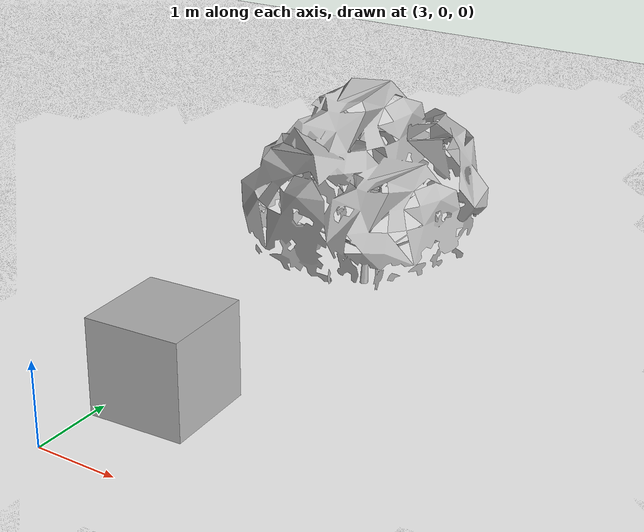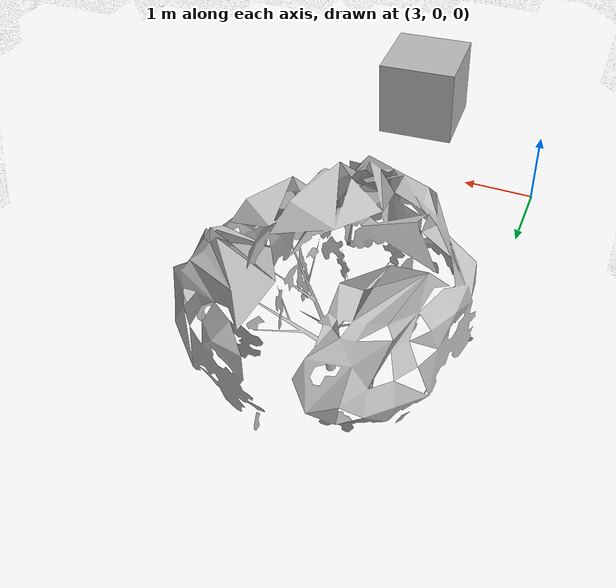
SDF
<?xml version="1.0" ?>
<sdf version="1.5">
  <world name="default">
    <!-- A global light source -->
    <include>
      <uri>model://sun</uri>
    </include>
    <!-- A ground plane -->
    <include>
      <uri>model://ground_plane</uri>
    </include>

    <physics name='default_physics' default='0' type='ode'>
      <gravity>0 0 -9.8066</gravity>
      <ode>
        <solver>
          <type>quick</type>
          <iters>10</iters>
          <sor>1.3</sor>
          <use_dynamic_moi_rescaling>0</use_dynamic_moi_rescaling>
        </solver>
        <constraints>
          <cfm>0</cfm>
          <erp>0.2</erp>
          <contact_max_correcting_vel>100</contact_max_correcting_vel>
          <contact_surface_layer>0.001</contact_surface_layer>
        </constraints>
      </ode>
      <max_step_size>0.004</max_step_size>
      <real_time_factor>1</real_time_factor>
      <real_time_update_rate>250</real_time_update_rate>
      <magnetic_field>6.0e-6 2.3e-5 -4.2e-5</magnetic_field>
    </physics>

    <include>
      <uri>model://scenario2</uri>
      <name>landscape</name>
      <pose>-15.0 -15.0 0.5 0 0 0</pose>
    </include>

    <!-- Trees!!! -->

    <include>
      <uri>model://OliveTree1</uri>
      <name>tree1</name>
      <pose>3 3 0.1 0 0 0</pose>
    </include>

    <model name='textured_shapes_c'>
      <pose>4.577162 1.575164 1.501634 -0.001606 0.000826 0.059386</pose>
      <link name='box'>
        <pose>0 -1.5 0 0 -0 0</pose>
        <collision name='collision'>
          <geometry>
            <box>
              <size>1 1 1</size>
            </box>
          </geometry>
          <max_contacts>10</max_contacts>
          <surface>
            <contact>
              <ode/>
            </contact>
            <bounce/>
            <friction>
              <torsional>
                <ode/>
              </torsional>
              <ode/>
            </friction>
          </surface>
        </collision>
        <visual name='visual'>
          <geometry>
            <box>
              <size>1 1 1</size>
            </box>
          </geometry>
          <material>
            <script>
              <uri>model://fire/materials/scripts</uri>
              <uri>model://fire/materials/textures</uri>
              <name>TexturedShape/APtag</name>
            </script>
          </material>
        </visual>
        <self_collide>0</self_collide>
        <inertial>
          <pose>0 0 0 0 -0 0</pose>
          <inertia>
            <ixx>1</ixx>
            <ixy>0</ixy>
            <ixz>0</ixz>
            <iyy>1</iyy>
            <iyz>0</iyz>
            <izz>1</izz>
          </inertia>
          <mass>1</mass>
        </inertial>
        <enable_wind>0</enable_wind>
        <kinematic>0</kinematic>
      </link>
    </model>
    <model name='textured_shapes_c'>
      <pose>4.577162 1.575164 1.501634 -0.001606 0.000826 0.059386</pose>
      <link name='box'>
        <pose>0 -1.5 0 0 -0 0</pose>
        <collision name='collision'>
          <geometry>
            <box>
              <size>1 1 1</size>
            </box>
          </geometry>
          <max_contacts>10</max_contacts>
          <surface>
            <contact>
              <ode/>
            </contact>
            <bounce/>
            <friction>
              <torsional>
                <ode/>
              </torsional>
              <ode/>
            </friction>
          </surface>
        </collision>
        <visual name='visual'>
          <geometry>
            <box>
              <size>1 1 1</size>
            </box>
          </geometry>
          <material>
            <script>
              <uri>model://fire/materials/scripts</uri>
              <uri>model://fire/materials/textures</uri>
              <name>TexturedShape/APtag</name>
            </script>
          </material>
        </visual>
        <self_collide>0</self_collide>
        <inertial>
          <pose>0 0 0 0 -0 0</pose>
          <inertia>
            <ixx>1</ixx>
            <ixy>0</ixy>
            <ixz>0</ixz>
            <iyy>1</iyy>
            <iyz>0</iyz>
            <izz>1</izz>
          </inertia>
          <mass>1</mass>
        </inertial>
        <enable_wind>0</enable_wind>
        <kinematic>0</kinematic>
      </link>
    </model>
    <model name='textured_shapes_c'>
        <pose>2.43455 1.22622 1 0 -0 -0.054698</pose>
        <scale>1 1 1</scale>
        <link name='box'>
          <pose>2.35254 -0.271539 1 0 -0 -0.054698</pose>
          <velocity>0 0 0 0 -0 0</velocity>
          <acceleration>0 -0 0 0 -0 0</acceleration>
          <wrench>0 -0 0 0 -0 0</wrench>
        </link>
    </model>
  </world>
</sdf>

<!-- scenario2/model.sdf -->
<sdf version="1.5">
  <model name="scenario2">
      <link name="scenario2_link">
        <collision name="scenario2_collision">
          <geometry>
            <mesh>
	          <uri>model://scenario2/meshes/scenario2.dae</uri>
              <scale>1 1 0.005</scale>
            </mesh>
          </geometry>
        </collision>
        <visual name="scenario2_visual">
          <geometry>
            <mesh>
	          <uri>model://scenario2/meshes/scenario2.dae</uri>
              <scale>1 1 0.005</scale>
            </mesh>
          </geometry>
          <cast_shadows>false</cast_shadows>
        </visual>
      </link>
      <static>true</static>
    </model>
</sdf>

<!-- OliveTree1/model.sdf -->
<sdf version="1.5">
  <model name="OliveTree1">
      <static>true</static>
      <link name="OliveTree1_link">
	  <collision name="OliveTree1_collision">
	      <geometry>
		  <mesh>
		    <uri>model://OliveTree1/meshes/OliveTree1.dae</uri>
		    <scale>1 1 1</scale>
		  </mesh>
	      </geometry>
	  </collision>
	  <visual name="OliveTree1_visual">
	      <geometry>
		<mesh>
		  <uri>model://OliveTree1/meshes/OliveTree1.dae</uri>
		  <scale>1 1 1</scale>
		</mesh>
	      </geometry>
	      <cast_shadows>false</cast_shadows>
	  </visual>
      </link>
    </model>
</sdf>
